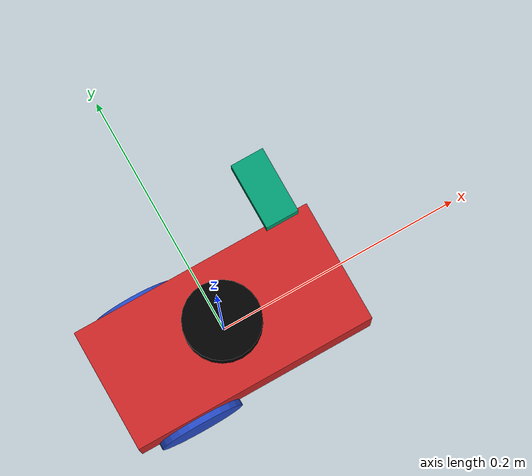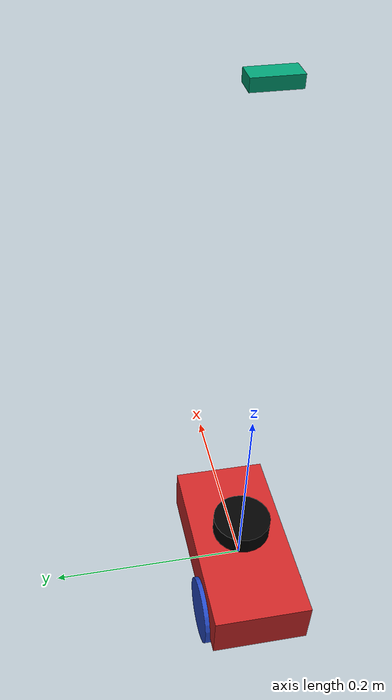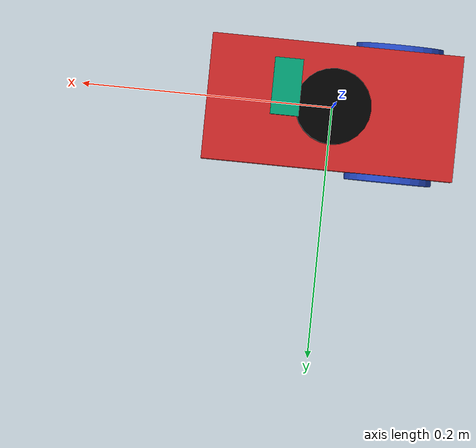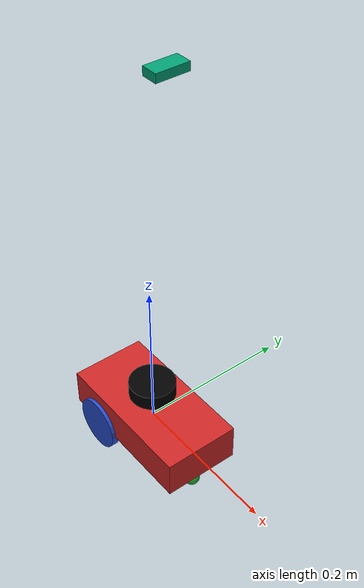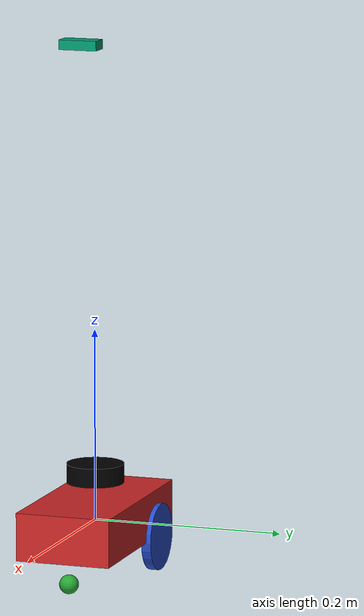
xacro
<?xml version="1.0" ?>
<robot name="yolobot" xmlns:xacro="http://www.ros.org/wiki/xacro">
  <!-- Arguments/Parameters -->
  <xacro:arg name="robot_name" default="yolobot"/>
  <xacro:arg name="prefix" default=""/>

  <!-- Define the robot name -->
  <xacro:property name="robot_name" value="$(arg robot_name)"/>
  <xacro:property name="prefix" value="$(arg prefix)"/>

  <!-- Common Materials -->
  <material name="${prefix}black">
    <color rgba="0.0 0.0 0.0 1.0"/>
  </material>
  <material name="${prefix}blue">
    <color rgba="0.203125 0.23828125 0.28515625 1.0"/>
  </material>
  <material name="${prefix}green">
    <color rgba="0.0 0.8 0.0 1.0"/>
  </material>
  <material name="${prefix}grey">
    <color rgba="0.2 0.2 0.2 1.0"/>
  </material>
  <material name="${prefix}orange">
    <color rgba="1.0 0.423529411765 0.0392156862745 1.0"/>
  </material>
  <material name="${prefix}brown">
    <color rgba="0.870588235294 0.811764705882 0.764705882353 1.0"/>
  </material>
  <material name="${prefix}red">
    <color rgba="0.80078125 0.12890625 0.1328125 1.0"/>
  </material>
  <material name="${prefix}white">
    <color rgba="1.0 1.0 1.0 1.0"/>
  </material>

  <!-- Gazebo materials -->
  <gazebo reference="${prefix}chassis">
    <material>Gazebo/Blue</material>
  </gazebo>
  <gazebo reference="${prefix}left_wheel">
    <kp>1000.0</kp>
    <kd>1000.0</kd>
    <mu1>0.5</mu1>
    <mu2>0.5</mu2>
    <material>Gazebo/Blue</material>
  </gazebo>
  <gazebo reference="${prefix}right_wheel">
    <kp>1000.0</kp>
    <kd>1000.0</kd>
    <mu1>0.5</mu1>
    <mu2>0.5</mu2>
    <material>Gazebo/Blue</material>
  </gazebo>

  <!-- ROS Control Plugin -->
  <gazebo>
    <plugin filename="libgazebo_ros_control.so" name="gazebo_ros_control">
      <robotNamespace>/${robot_name}</robotNamespace>
      <robotParam>/robot_description</robotParam>
      <robotSimType>gazebo_ros_control/DefaultRobotHWSim</robotSimType>
    </plugin>
  </gazebo>

  <!-- Differential Drive Controller -->
  <gazebo>
    <plugin filename="libgazebo_ros_diff_drive.so" name="differential_drive_controller">
      <ros>
        <namespace>/${robot_name}</namespace>
      </ros>

      <!-- wheels -->
      <left_joint>${prefix}joint_right_wheel</left_joint>
      <right_joint>${prefix}joint_left_wheel</right_joint>

      <!-- kinematics -->
      <wheel_separation>0.1</wheel_separation>
      <wheel_diameter>0.025</wheel_diameter>

      <!-- limits -->
      <max_wheel_torque>0.1</max_wheel_torque>
      <max_wheel_acceleration>1.0</max_wheel_acceleration>

      <!-- output -->
      <publish_odom>true</publish_odom>
      <publish_odom_tf>true</publish_odom_tf>

      <odometry_frame>odom</odometry_frame>
      <robot_base_frame>${prefix}chassis</robot_base_frame>
    </plugin>
  </gazebo>

  <!-- IMU Plugin -->
  <gazebo>
    <plugin filename="libgazebo_ros_imu.so" name="gazebo_ros_imu_controller">
      <robotNamespace>/${robot_name}/</robotNamespace>
      <topicName>imu/data3</topicName>
      <serviceName>imu/service</serviceName>
      <bodyName>${prefix}chassis</bodyName>
      <gaussianNoise>0</gaussianNoise>
      <rpyOffsets>0 0 0</rpyOffsets>
      <updateRate>50.0</updateRate>
      <alwaysOn>true</alwaysOn>
      <gaussianNoise>0</gaussianNoise>
    </plugin>
  </gazebo>

  <!-- Base Link -->
  <link name="${prefix}base_link">
  </link>

  <!-- Chassis Link -->
  <link name="${prefix}chassis">
    <!-- pose and inertial -->
    <pose>0 0 0 0 0 0</pose>
    <inertial>
      <mass value="1.0"/>
      <origin rpy="0 0 0" xyz="0 0 -0.025"/>
      <inertia ixx="0.00033333333333333343" ixy="0" ixz="0" iyy="0.00033333333333333343" iyz="0" izz="0.00033333333333333343"/>
      <inertia ixx="0.000241935" ixy="0" ixz="0" iyy="0.000241935" iyz="0" izz="0.000241935"/>
    </inertial>
    <!-- body -->
    <collision name="${prefix}collision_chassis">
      <geometry>
        <box size="0.2 0.1 0.05"/>
      </geometry>
    </collision>
    <visual name="${prefix}visual_chassis">
      <geometry>
        <box size="0.2 0.1 0.05"/>
      </geometry>
    </visual>
  </link>

  <gazebo reference="${prefix}chassis">
    <material>Gazebo/Red</material>
  </gazebo>

  <joint name="${prefix}base_link_joint" type="fixed">
    <origin rpy="0 0 0" xyz="0 0 0"/>
    <parent link="${prefix}base_link"/>
    <child link="${prefix}chassis"/>
  </joint>

  <!-- Camera Link -->
  <link name='${prefix}rgb_cam_camera_link'>
    <visual>
      <origin xyz="0 0 0" rpy="0 0 0"/>
      <geometry>
        <box size="0.02 0.04 0.01"/>
      </geometry>
    </visual>
  </link>

  <joint name="${prefix}rgb_cam_camera_link_joint" type="fixed">
    <origin rpy="0 0 0" xyz="0.04 0.0 0.5"/>
    <parent link="${prefix}chassis"/>
    <child link="${prefix}rgb_cam_camera_link"/>
  </joint>

  <link name="${prefix}rgb_cam_camera_link_frame">
  </link>

  <joint name="${prefix}rgb_cam_camera_frame_joint" type="fixed">
    <origin xyz="0.01 0 0" rpy="0 0 0" />
    <parent link="${prefix}rgb_cam_camera_link" />
    <child link="${prefix}rgb_cam_camera_link_frame" />
    <axis xyz="0 0 0"/>
  </joint>

  <!-- Camera Gazebo Plugin -->
  <gazebo reference="${prefix}rgb_cam_camera_link_frame">
    <sensor type="camera" name="${prefix}rgb_cam">
      <always_on>1</always_on>
      <update_rate>10.0</update_rate>
      <camera name="${prefix}rgb_cam">
        <pose>0 0 0 0 0 0</pose>
        <horizontal_fov>1.3962634</horizontal_fov>
        <image>
          <width>640</width>
          <height>480</height>
          <format>R8G8B8</format>
        </image>
        <clip>
          <near>0.005</near>
          <far>20.0</far>
        </clip>
      </camera>
      <plugin name="camera_controller" filename="libgazebo_ros_camera.so">
        <alwaysOn>true</alwaysOn>
        <updateRate>0.0</updateRate>
        <cameraName>rgb_cam</cameraName>
        <imageTopicName>image_raw</imageTopicName>
        <cameraInfoTopicName>camera_info</cameraInfoTopicName>
        <frameName>${prefix}rgb_cam_camera_link_frame</frameName>
        <hackBaseline>0.07</hackBaseline>
        <distortionK1>0.0</distortionK1>
        <distortionK2>0.0</distortionK2>
        <distortionK3>0.0</distortionK3>
        <distortionT1>0.0</distortionT1>
        <distortionT2>0.0</distortionT2>
      </plugin>
    </sensor>
  </gazebo>

  <!-- Right Wheel -->
  <link name="${prefix}right_wheel">
    <inertial>
      <mass value="0.2"/>
      <origin rpy="0 1.5707 1.5707" xyz="0 0 0"/>
      <inertia ixx="3.126666666666667e-05" ixy="0" ixz="0" iyy="3.126666666666667e-05" iyz="0" izz="6.250000000000001e-05"/>
    </inertial>
    <collision name="${prefix}link_right_wheel_collision">
      <origin rpy="0 1.5707 1.5707" xyz="0 0 0"/>
      <geometry>
        <cylinder length="0.01" radius="0.035"/>
      </geometry>
    </collision>
    <visual name="${prefix}link_right_wheel_visual">
      <origin rpy="0 1.5707 1.5707" xyz="0 0 0"/>
      <geometry>
        <cylinder length="0.01" radius="0.035"/>
      </geometry>
    </visual>
  </link>

  <joint name="${prefix}joint_right_wheel" type="continuous">
    <origin rpy="0 0 0" xyz="-0.05 0.05 -0.025"/>
    <child link="${prefix}right_wheel"/>
    <parent link="${prefix}chassis"/>
    <axis rpy="0 0 0" xyz="0 1 0"/>
    <limit effort="10000" velocity="1000"/>
    <joint_properties damping="1.0" friction="1.0"/>
  </joint>

  <!-- Left Wheel -->
  <link name="${prefix}left_wheel">
    <inertial>
      <mass value="0.2"/>
      <origin rpy="0 1.5707 1.5707" xyz="0 0 0"/>
      <inertia ixx="3.126666666666667e-05" ixy="0" ixz="0" iyy="3.126666666666667e-05" iyz="0" izz="6.250000000000001e-05"/>
    </inertial>
    <collision name="${prefix}link_left_wheel_collision">
      <origin rpy="0 1.5707 1.5707" xyz="0 0 0"/>
      <geometry>
        <cylinder length="0.01" radius="0.035"/>
      </geometry>
    </collision>
    <visual name="${prefix}link_left_wheel_visual">
      <origin rpy="0 1.5707 1.5707" xyz="0 0 0"/>
      <geometry>
        <cylinder length="0.01" radius="0.035"/>
      </geometry>
    </visual>
  </link>

  <joint name="${prefix}joint_left_wheel" type="continuous">
    <origin rpy="0 0 0" xyz="-0.05 -0.05 -0.025"/>
    <child link="${prefix}left_wheel"/>
    <parent link="${prefix}chassis"/>
    <axis rpy="0 0 0" xyz="0 1 0"/>
    <limit effort="10000" velocity="1000"/>
    <joint_properties damping="1.0" friction="1.0"/>
  </joint>

  <!-- Front Caster -->
  <link name="${prefix}front_yaw_link">
    <inertial>
      <mass value="0.001"/>
      <origin rpy="0 1.5707 1.5707" xyz="0 0 0"/>
      <inertia ixx="5.145833333333334e-09" ixy="0" ixz="0" iyy="5.145833333333334e-09" iyz="0" izz="1.0125000000000003e-08"/>
    </inertial>
    <collision name="${prefix}front_yaw_collision">
      <origin rpy="0 1.5707 1.5707" xyz="0 0 0"/>
      <geometry>
        <cylinder length="0.001" radius="0.0045000000000000005"/>
      </geometry>
    </collision>
  </link>

  <joint name="${prefix}front_yaw_joint" type="continuous">
    <origin rpy="0 0 0" xyz="0.08 0 -0.05"/>
    <parent link="${prefix}chassis"/>
    <child link="${prefix}front_yaw_link"/>
    <axis xyz="0 0 1"/>
    <limit effort="1000.0" velocity="100.0"/>
    <dynamics damping="0.0" friction="0.1"/>
  </joint>

  <transmission name="${prefix}front_yaw_joint_trans">
    <type>transmission_interface/SimpleTransmission</type>
    <joint name="${prefix}front_yaw_joint">
      <hardwareInterface>EffortJointInterface</hardwareInterface>
    </joint>
    <actuator name="${prefix}front_yaw_jointMotor">
      <hardwareInterface>EffortJointInterface</hardwareInterface>
      <mechanicalReduction>1</mechanicalReduction>
    </actuator>
  </transmission>

  <link name="${prefix}front_roll_link">
    <inertial>
      <mass value="0.001"/>
      <origin rpy="0 1.5707 1.5707" xyz="0 0 0"/>
      <inertia ixx="5.145833333333334e-09" ixy="0" ixz="0" iyy="5.145833333333334e-09" iyz="0" izz="1.0125000000000003e-08"/>
    </inertial>
    <collision name="${prefix}front_roll_collision">
      <origin rpy="0 1.5707 1.5707" xyz="0 0 0"/>
      <geometry>
        <cylinder length="0.001" radius="0.0045000000000000005"/>
      </geometry>
    </collision>
  </link>

  <joint name="${prefix}front_roll_joint" type="continuous">
    <origin rpy="0 0 0" xyz="0 0 0"/>
    <parent link="${prefix}front_yaw_link"/>
    <child link="${prefix}front_roll_link"/>
    <axis xyz="1 0 0"/>
    <limit effort="1000.0" velocity="100.0"/>
    <dynamics damping="0.0" friction="0.1"/>
  </joint>

  <transmission name="${prefix}front_roll_joint_trans">
    <type>transmission_interface/SimpleTransmission</type>
    <joint name="${prefix}front_roll_joint">
      <hardwareInterface>EffortJointInterface</hardwareInterface>
    </joint>
    <actuator name="${prefix}front_roll_jointMotor">
      <hardwareInterface>EffortJointInterface</hardwareInterface>
      <mechanicalReduction>1</mechanicalReduction>
    </actuator>
  </transmission>

  <link name="${prefix}front_pitch_link">
    <inertial>
      <mass value="0.001"/>
      <origin rpy="0 1.5707 1.5707" xyz="0 0 0"/>
      <inertia ixx="4e-08" ixy="0" ixz="0" iyy="4e-08" iyz="0" izz="4e-08"/>
    </inertial>
    <collision name="${prefix}front_collision">
      <origin rpy="0 1.5707 1.5707" xyz="0 0 0"/>
      <geometry>
        <sphere radius="0.01"/>
      </geometry>
    </collision>
    <visual name="${prefix}front_visual">
      <origin rpy="0 1.5707 1.5707" xyz="0 0 0"/>
      <geometry>
        <sphere radius="0.01"/>
      </geometry>
    </visual>
  </link>

  <joint name="${prefix}front_pitch_joint" type="continuous">
    <origin rpy="0 0 0" xyz="0 0 0"/>
    <parent link="${prefix}front_roll_link"/>
    <child link="${prefix}front_pitch_link"/>
    <axis xyz="0 1 0"/>
    <limit effort="1000.0" velocity="100.0"/>
    <dynamics damping="0.0" friction="0.1"/>
  </joint>

  <transmission name="${prefix}front_pitch_joint_trans">
    <type>transmission_interface/SimpleTransmission</type>
    <joint name="${prefix}front_pitch_joint">
      <hardwareInterface>EffortJointInterface</hardwareInterface>
    </joint>
    <actuator name="${prefix}front_pitch_jointMotor">
      <hardwareInterface>EffortJointInterface</hardwareInterface>
      <mechanicalReduction>1</mechanicalReduction>
    </actuator>
  </transmission>

  <gazebo reference="${prefix}front_pitch_link">
    <kp>1000000000000000000000000000.0</kp>
    <kd>1000000000000000000000000000.0</kd>
    <mu1>0.5</mu1>
    <mu2>0.5</mu2>
    <material>Gazebo/Green</material>
  </gazebo>

  <!-- 2D LIDAR -->
  <link name="${prefix}lidar_link">
    <inertial>
      <mass value="0.1"/>
      <origin xyz="0 0 0" rpy="0 0 0"/>
      <inertia ixx="0.000001" ixy="0" ixz="0" iyy="0.000001" iyz="0" izz="0.000001"/>
    </inertial>
    <collision>
      <origin xyz="0 0 0" rpy="0 0 0"/>
      <geometry>
        <cylinder radius="0.03" length="0.02"/>
      </geometry>
    </collision>
    <visual>
      <origin xyz="0 0 0" rpy="0 0 0"/>
      <geometry>
        <cylinder radius="0.03" length="0.02"/>
      </geometry>
      <material name="${prefix}black"/>
    </visual>
  </link>

  <joint name="${prefix}lidar_joint" type="fixed">
    <origin xyz="0.0 0.0 0.05" rpy="0 0 0"/>
    <parent link="${prefix}chassis"/>
    <child link="${prefix}lidar_link"/>
  </joint>

  <gazebo reference="${prefix}lidar_link">
    <material>Gazebo/Black</material>
    <sensor type="ray" name="${prefix}lidar">
      <pose>0 0 0 0 0 0</pose>
      <visualize>true</visualize>
      <update_rate>10</update_rate>
      <ray>
        <scan>
          <horizontal>
            <samples>360</samples>
            <resolution>1</resolution>
            <min_angle>-3.14159</min_angle>
            <max_angle>3.14159</max_angle>
          </horizontal>
        </scan>
        <range>
          <min>0.10</min>
          <max>10.0</max>
          <resolution>0.01</resolution>
        </range>
        <noise>
          <type>gaussian</type>
          <mean>0.0</mean>
          <stddev>0.01</stddev>
        </noise>
      </ray>
      <plugin name="gazebo_ros_lidar_controller" filename="libgazebo_ros_ray_sensor.so">
        <ros>
          <namespace>/${robot_name}</namespace>
          <remapping>~/out:=scan</remapping>
        </ros>
        <output_type>sensor_msgs/LaserScan</output_type>
        <frame_name>${prefix}lidar_link</frame_name>
      </plugin>
    </sensor>
  </gazebo>
</robot>
